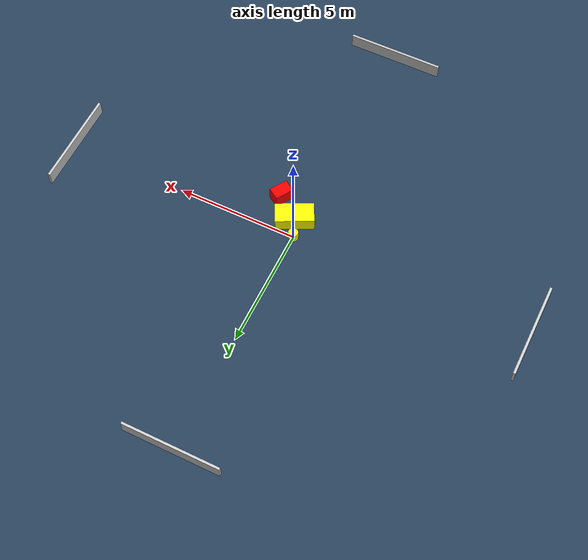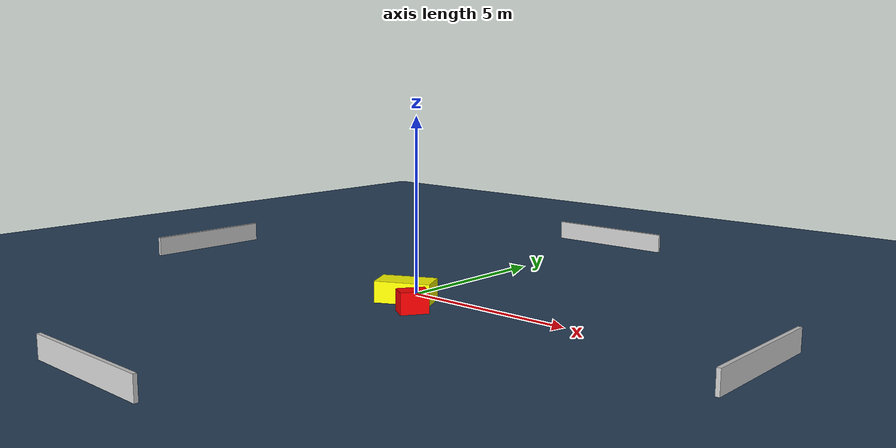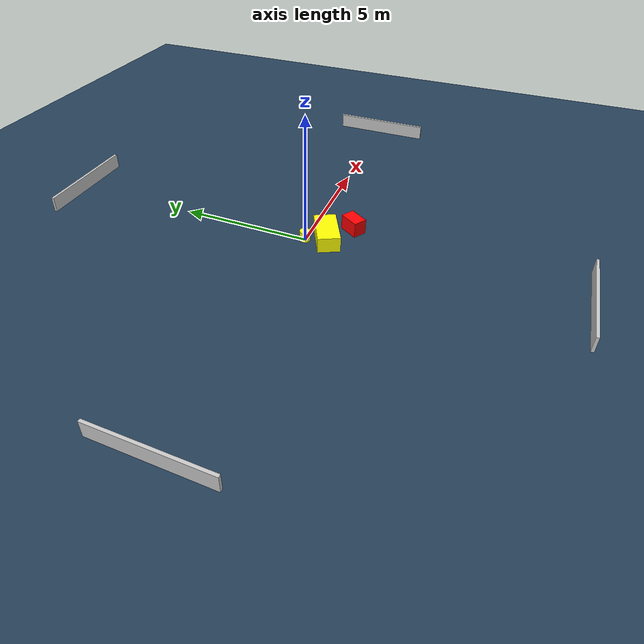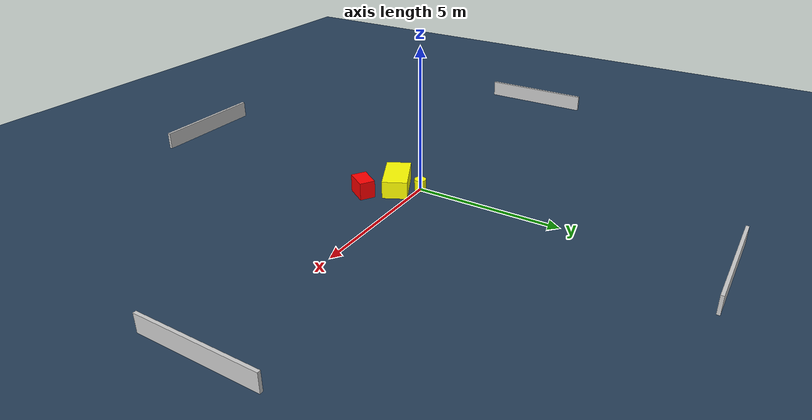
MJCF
<?xml version="1.0" ?>
<mujoco model="generated_environment">
  <option timestep="0.01" integrator="RK4" cone="elliptic"/>
  <default>
    <geom density="1"/>
  </default>
  <asset>
    <texture builtin="gradient" height="3072" name="skybox" rgb1="0.3 0.5 0.7" rgb2="0 0 0" type="skybox" width="512"/>
    <texture builtin="checker" height="300" name="groundplane" rgb1="0.2 0.3 0.4" rgb2="0.1 0.2 0.3" type="2d" width="300"/>
    <material name="groundplane" reflectance="0.2" texrepeat="5 5" texture="groundplane"/>
  </asset>
  <worldbody>
    <light dir="0 0 -1" directional="true" pos="0 0 1.5"/>
    <geom condim="3" friction="0.5 0.005 0.001" material="groundplane" name="floor" pos="0 0 0" size="0 0 0.05" type="plane"/>
    <body name="walls">
      <geom name="wall_1" condim="4" pos="-10.0 0.0 0.3" rgba="0.800000011920929 0.800000011920929 0.800000011920929 1.0" size="0.05 2.0 0.3" type="box"/>
      <geom name="wall_2" condim="4" pos="10.0 0.0 0.3" rgba="0.800000011920929 0.800000011920929 0.800000011920929 1.0" size="0.05 2.0 0.3" type="box"/>
      <geom name="wall_3" condim="4" pos="0.0 -10.0 0.3" rgba="0.800000011920929 0.800000011920929 0.800000011920929 1.0" size="2.0 0.05 0.3" type="box"/>
      <geom name="wall_4" condim="4" pos="0.0 10.0 0.3" rgba="0.800000011920929 0.800000011920929 0.800000011920929 1.0" size="2.0 0.05 0.3" type="box"/>
    </body>
    <body name="robot">
      <joint name="joint_x" type="slide" pos="0 0 0" axis="1 0 0"/>
      <joint name="joint_y" type="slide" pos="0 0 0" axis="0 1 0"/>
      <geom name="robot" type="cylinder" pos="0.0 0.0 0.2" size="0.2 0.2 0.0" mass="5.0" friction="1.0 0.005 0.0001" condim="4" rgba="1.0 1.0 0.0 1.0"/>
    </body>
    <body name="obstacle_1_movable">
      <geom name="obstacle_1_movable" condim="4" pos="0.3109449409207332 -0.7423711134105749 0.3" euler="0 0 116.91322686163466" friction="0.0 0.005 0.001" rgba="1.0 1.0 0.0 1.0" size="0.42109188058399366 0.783327758203157 0.3" type="box" mass="0.1"/>
      <joint type="free"/>
    </body>
    <body name="obstacle_2_static">
      <geom name="obstacle_2_static" condim="4" pos="1.2538744639417854 -1.4778223294048147 0.3" euler="0 0 327.5391704632461" friction="0.0 0.005 0.001" rgba="1.0 0.0 0.0 1.0" size="0.2641470041558492 0.3914915694917135 0.3" type="box"/>
    </body>
  </worldbody>
  <actuator>
    <motor name="actuator_x" joint="joint_x" gear="1" ctrlrange="-1 1"/>
    <motor name="actuator_y" joint="joint_y" gear="1" ctrlrange="-1 1"/>
  </actuator>
</mujoco>
